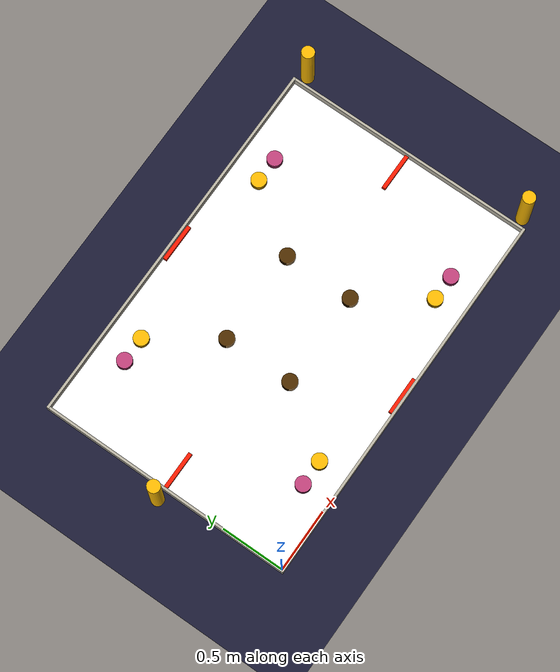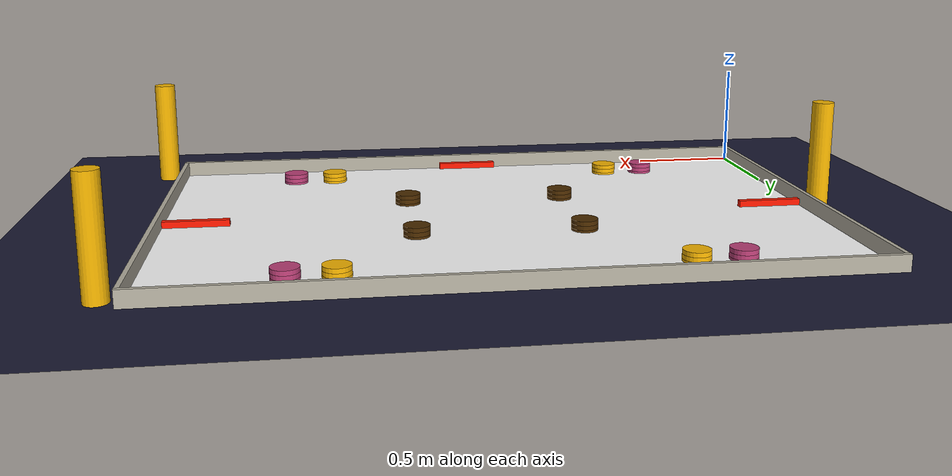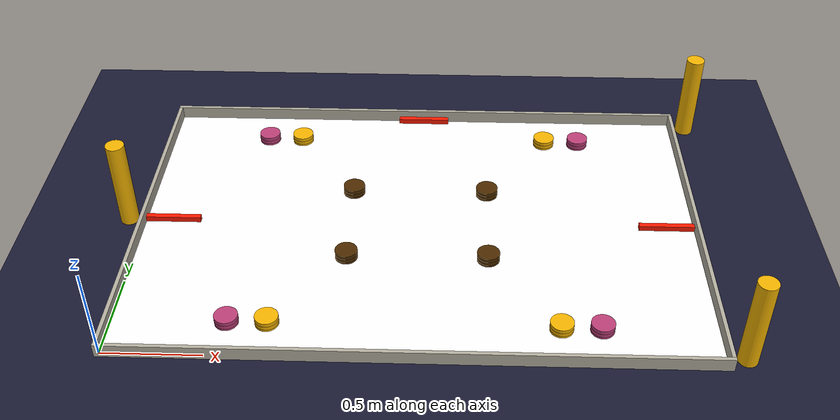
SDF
<?xml version="1.0" ?>
<sdf version="1.4">

    <world name="eurobot_2023">
        <!-- Plugin for simulating physics -->
        <plugin filename="gz-sim-physics-system" name="gz::sim::systems::Physics">
        </plugin>

        <!-- Plugin for handling user commands -->
        <plugin filename="gz-sim-user-commands-system" name="gz::sim::systems::UserCommands">
        </plugin>

        <!-- Plugin for broadcasting scene updates -->
        <plugin filename="gz-sim-scene-broadcaster-system" name="gz::sim::systems::SceneBroadcaster">
        </plugin>

        <!-- Paramter for the physics engine -->
        <physics name="1ms" type="ignored">
            <max_step_size>0.01</max_step_size>
            <real_time_factor>1.0</real_time_factor>
        </physics>

        <!-- Plugin for handling sensors like the LIDAR -->
        <plugin filename="gz-sim-sensors-system" name="gz::sim::systems::Sensors">
            <render_engine>ogre2</render_engine>
        </plugin>

        <!-- Plugin for IMU -->
        <plugin filename="gz-sim-imu-system" name="gz::sim::systems::Imu">
        </plugin>

        <!-- Plugin for contact sensor -->
        <plugin filename="gz-sim-contact-system" name="gz::sim::systems::Contact">
        </plugin>

        <scene>
            <ambient>0.4 0.4 0.4 1</ambient>
            <shadows>false</shadows>
        </scene>
        <light type="directional" name="light1">
            <pose>1.5 1 50 0 0 0</pose>
            <diffuse>0.5 0.5 0.5 1</diffuse>
            <specular>1 1 1 0</specular>
            <direction>1 0 0.5</direction>
        </light>
        <light type="directional" name="light2">
            <pose>1.5 1 50 0 0 0</pose>
            <diffuse>0.5 0.5 0.5 1</diffuse>
            <specular>1 1 1 0</specular>
            <direction>1 0 -0.5</direction>
        </light>

        <model name="ground_plane">
            <static>true</static>
            <link name="ground_link">
                <collision name="collision1">
                    <geometry>
                        <plane>
                            <normal>0 0 1</normal>
                        </plane>
                    </geometry>
                </collision>
                <visual name="visual1">
                    <geometry>
                        <plane>
                            <normal>0 0 1</normal>
                            <size>100 100</size>
                        </plane>
                    </geometry>
                    <material>
                        <ambient>0.1 0.1 0.1 0</ambient>
                        <diffuse>0.1 0.1 0.2 0</diffuse>
                        <specular>0 0 0 0</specular>
                        <emissive>0 0 0 0</emissive>
                    </material>
                </visual>
            </link>
        </model>

        <!--Playground-->
        <include>
            <name>playground</name>
            <uri>model://eurobot_playground_23</uri>
            <pose>1.5 1.0 -0.001 0 0 0</pose>
        </include>

        <!--Walls-->

        <include>
            <name>wall1</name>
            <uri>model://eurobot_23/walls/x_orient</uri>
            <pose>1.5 -0.01 0.025 0 0 0</pose>
        </include>
        <include>
            <name>wall2</name>
            <uri>model://eurobot_23/walls/x_orient</uri>
            <pose>1.5 2.01 0.025 0 0 0</pose>
        </include>
        <include>
            <name>wall3</name>
            <uri>model://eurobot_23/walls/y_orient</uri>
            <pose>-0.01 1 0.025 0 0 0</pose>
        </include>
        <include>
            <name>wall4</name>
            <uri>model://eurobot_23/walls/y_orient</uri>
            <pose>3.01 1 0.025 0 0 0</pose>
        </include>

        <!--Landmarks yellow-->
        <model name="landmark2">
            <pose>-0.094 1.0 0.25 0 0 0</pose>
            <static>true</static>
            <link name="link">
                <collision name="collision">
                    <geometry>
                        <cylinder>
                            <length>0.5</length>
                            <radius>0.05</radius>
                        </cylinder>
                    </geometry>
                    <laser_retro>20.0</laser_retro>
                </collision>
                <visual name="visual">
                    <geometry>
                        <cylinder>
                            <length>0.5</length>
                            <radius>0.05</radius>
                        </cylinder>
                    </geometry>
                    <material>
                        <ambient>0.96 0.71 0.0 1</ambient>
                        <diffuse>0.96 0.71 0.0 1</diffuse>
                        <specular>0 0 0 0</specular>
                        <emissive>0 0 0 0</emissive>
                    </material>
                </visual>
            </link>
        </model>

        <model name="landmark4">
            <pose>3.094 0.05 0.25 0 0 0</pose>
            <static>true</static>
            <link name="link">
                <collision name="collision">
                    <geometry>
                        <cylinder>
                            <length>0.5</length>
                            <radius>0.05</radius>
                        </cylinder>
                    </geometry>
                    <laser_retro>40.0</laser_retro>
                </collision>
                <visual name="visual">
                    <geometry>
                        <cylinder>
                            <length>0.5</length>
                            <radius>0.05</radius>
                        </cylinder>
                    </geometry>
                    <material>
                        <ambient>0.96 0.71 0.0 1</ambient>
                        <diffuse>0.96 0.71 0.0 1</diffuse>
                        <specular>0 0 0 0</specular>
                        <emissive>0 0 0 0</emissive>
                    </material>
                </visual>
            </link>
        </model>

        <model name="landmark6">
            <pose>3.094 1.95 0.25 0 0 0</pose>
            <static>true</static>
            <link name="link">
                <collision name="collision">
                    <geometry>
                        <cylinder>
                            <length>0.5</length>
                            <radius>0.05</radius>
                        </cylinder>
                    </geometry>
                    <laser_retro>60.0</laser_retro>
                </collision>
                <visual name="visual">
                    <geometry>
                        <cylinder>
                            <length>0.5</length>
                            <radius>0.05</radius>
                        </cylinder>
                    </geometry>
                    <material>
                        <ambient>0.96 0.71 0.0 1</ambient>
                        <diffuse>0.96 0.71 0.0 1</diffuse>
                        <specular>0 0 0 0</specular>
                        <emissive>0 0 0 0</emissive>
                    </material>
                </visual>
            </link>
        </model>
        <!--Landmarks purple-->

        <!--Cherry Holder-->

        <include>
            <name>holder1</name>
            <uri>model://eurobot_23/cherry_holder</uri>
            <pose>1.5 0.015 0.015 0 0 0</pose>
        </include>
        <include>
            <name>holder2</name>
            <uri>model://eurobot_23/cherry_holder</uri>
            <pose>1.5 1.985 0.015 0 0 0</pose>
        </include>
        <include>
            <name>holder3</name>
            <uri>model://eurobot_23/cherry_holder</uri>
            <pose>0.15 1 0.015 0 0 0</pose>
        </include>
        <include>
            <name>holder4</name>
            <uri>model://eurobot_23/cherry_holder</uri>
            <pose>2.85 1 0.015 0 0 0</pose>
        </include>

        <!--Cakes-->

        <!--Cake Set 1-->
        <!--Cake1-->
        <include>
            <name>icing1</name>
            <uri>model://eurobot_23/cake_icing</uri>
            <pose>0.575 0.225 0.04 0 0 0</pose>
        </include>
        <include>
            <name>icing2</name>
            <uri>model://eurobot_23/cake_icing</uri>
            <pose>0.575 0.225 0.02 0 0 0</pose>
        </include>
        <include>
            <name>icing3</name>
            <uri>model://eurobot_23/cake_icing</uri>
            <pose>0.575 0.225 0.00 0 0 0</pose>
        </include>

        <!--Cake2-->
        <include>
            <name>cream1</name>
            <uri>model://eurobot_23/cake_cream</uri>
            <pose>0.775 0.225 0.04 0 0 0</pose>
        </include>
        <include>
            <name>cream2</name>
            <uri>model://eurobot_23/cake_cream</uri>
            <pose>0.775 0.225 0.02 0 0 0</pose>
        </include>
        <include>
            <name>cream3</name>
            <uri>model://eurobot_23/cake_cream</uri>
            <pose>0.775 0.225 0.00 0 0 0</pose>
        </include>

        <!--Cake3-->
        <include>
            <name>sponge1</name>
            <uri>model://eurobot_23/cake_sponge</uri>
            <pose>1.125 0.725 0.04 0 0 0</pose>
        </include>
        <include>
            <name>sponge2</name>
            <uri>model://eurobot_23/cake_sponge</uri>
            <pose>1.125 0.725 0.02 0 0 0</pose>
        </include>
        <include>
            <name>sponge3</name>
            <uri>model://eurobot_23/cake_sponge</uri>
            <pose>1.125 0.725 0.00 0 0 0</pose>
        </include>

        <!--Cake Set 2-->
        <!--Cake4-->
        <include>
            <name>sponge4</name>
            <uri>model://eurobot_23/cake_sponge</uri>
            <pose>1.875 0.725 0.04 0 0 0</pose>
        </include>
        <include>
            <name>sponge5</name>
            <uri>model://eurobot_23/cake_sponge</uri>
            <pose>1.875 0.725 0.02 0 0 0</pose>
        </include>
        <include>
            <name>sponge6</name>
            <uri>model://eurobot_23/cake_sponge</uri>
            <pose>1.875 0.725 0.00 0 0 0</pose>
        </include>

        <!--Cake5-->

        <include>
            <name>cream4</name>
            <uri>model://eurobot_23/cake_cream</uri>
            <pose>2.225 0.225 0.04 0 0 0</pose>
        </include>
        <include>
            <name>cream5</name>
            <uri>model://eurobot_23/cake_cream</uri>
            <pose>2.225 0.225 0.02 0 0 0</pose>
        </include>
        <include>
            <name>cream6</name>
            <uri>model://eurobot_23/cake_cream</uri>
            <pose>2.225 0.225 0.00 0 0 0</pose>
        </include>

        <!--Cake6-->
        <include>
            <name>icing4</name>
            <uri>model://eurobot_23/cake_icing</uri>
            <pose>2.425 0.225 0.04 0 0 0</pose>
        </include>
        <include>
            <name>icing5</name>
            <uri>model://eurobot_23/cake_icing</uri>
            <pose>2.425 0.225 0.02 0 0 0</pose>
        </include>
        <include>
            <name>icing6</name>
            <uri>model://eurobot_23/cake_icing</uri>
            <pose>2.425 0.225 0.00 0 0 0</pose>
        </include>

        <!--Cake Set 3-->
        <!--Cake7-->
        <include>
            <name>icing7</name>
            <uri>model://eurobot_23/cake_icing</uri>
            <pose>2.425 1.775 0.04 0 0 0</pose>
        </include>
        <include>
            <name>icing8</name>
            <uri>model://eurobot_23/cake_icing</uri>
            <pose>2.425 1.775 0.02 0 0 0</pose>
        </include>
        <include>
            <name>icing9</name>
            <uri>model://eurobot_23/cake_icing</uri>
            <pose>2.425 1.775 0.00 0 0 0</pose>
        </include>

        <!--Cake8-->
        <include>
            <name>cream7</name>
            <uri>model://eurobot_23/cake_cream</uri>
            <pose>2.225 1.775 0.04 0 0 0</pose>
        </include>
        <include>
            <name>cream8</name>
            <uri>model://eurobot_23/cake_cream</uri>
            <pose>2.225 1.775 0.02 0 0 0</pose>
        </include>
        <include>
            <name>cream9</name>
            <uri>model://eurobot_23/cake_cream</uri>
            <pose>2.225 1.775 0.00 0 0 0</pose>
        </include>

        <!--Cake9-->
        <include>
            <name>sponge7</name>
            <uri>model://eurobot_23/cake_sponge</uri>
            <pose>1.875 1.275 0.04 0 0 0</pose>
        </include>
        <include>
            <name>sponge8</name>
            <uri>model://eurobot_23/cake_sponge</uri>
            <pose>1.875 1.275 0.02 0 0 0</pose>
        </include>
        <include>
            <name>sponge9</name>
            <uri>model://eurobot_23/cake_sponge</uri>
            <pose>1.875 1.275 0.00 0 0 0</pose>
        </include>

        <!--Cake Set 4-->
        <!--Cake10-->
        <include>
            <name>sponge10</name>
            <uri>model://eurobot_23/cake_sponge</uri>
            <pose>1.125 1.275 0.04 0 0 0</pose>
        </include>
        <include>
            <name>sponge11</name>
            <uri>model://eurobot_23/cake_sponge</uri>
            <pose>1.125 1.275 0.02 0 0 0</pose>
        </include>
        <include>
            <name>sponge12</name>
            <uri>model://eurobot_23/cake_sponge</uri>
            <pose>1.125 1.275 0.00 0 0 0</pose>
        </include>

        <!--Cake11-->
        <include>
            <name>cream10</name>
            <uri>model://eurobot_23/cake_cream</uri>
            <pose>0.775 1.775 0.04 0 0 0</pose>
        </include>
        <include>
            <name>cream11</name>
            <uri>model://eurobot_23/cake_cream</uri>
            <pose>0.775 1.775 0.02 0 0 0</pose>
        </include>
        <include>
            <name>cream12</name>
            <uri>model://eurobot_23/cake_cream</uri>
            <pose>0.775 1.775 0.00 0 0 0</pose>
        </include>

        <!--Cake12-->
        <include>
            <name>icing10</name>
            <uri>model://eurobot_23/cake_icing</uri>
            <pose>0.575 1.775 0.04 0 0 0</pose>
        </include>
        <include>
            <name>icing11</name>
            <uri>model://eurobot_23/cake_icing</uri>
            <pose>0.575 1.775 0.02 0 0 0</pose>
        </include>
        <include>
            <name>icing12</name>
            <uri>model://eurobot_23/cake_icing</uri>
            <pose>0.575 1.775 0.00 0 0 0</pose>
        </include>

    </world>
</sdf>

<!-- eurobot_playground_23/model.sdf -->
<sdf version="1.6">
  <model name="Eurobot Playground Model">
    <static>true</static>
    <link name="plane">
      <collision name="plane_collision">
        <geometry>
          <box>
            <size>3 2 0.0001</size>
          </box>
        </geometry>
      </collision>
      <visual name="plane_visual">
        <geometry>
          <box>
            <size>3 2 0.0001</size>
          </box>
        </geometry>
        <material>
          <ambient>1 1 1 1</ambient>
          <diffuse>1 1 1 1</diffuse>
          <specular>0.1 0.1 0.1 1</specular>
          <pbr>
            <metal>
              <albedo_map>materials/textures/vinyle_table_2023_large.png</albedo_map>
              <roughness>1.0</roughness>
              <metalness>0.0</metalness>
            </metal>
          </pbr>
        </material>
      </visual>
    </link>

  </model>
</sdf>

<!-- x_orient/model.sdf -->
<sdf version="1.5">
    <model name="wall">
        <static>true</static>
        <pose>1.502 0 0 0 0 0</pose>
        <link name="body">
            <collision name="collision1">
                <geometry>
                <box>
                    <size>3.04 0.02 0.09</size>
                </box>
                </geometry>
            </collision>
            <visual name="visual1">
                <geometry>
                <box>
                    <size>3.04 0.02 0.09</size>
                </box>
                </geometry>
                <material>
                <ambient>0.71 0.69 0.63 1.0</ambient>
                <diffuse>0.71 0.69 0.63 1.0</diffuse>
                <specular>0.1 0.1 0.1 1</specular>
                <emissive>0 0 0 0</emissive>
                </material>
            </visual>
        </link>
    </model>
</sdf>

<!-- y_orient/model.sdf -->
<sdf version="1.5">
    <model name="wall">
        <static>true</static>
        <pose>1.5 0 0 0 0 0</pose>
        <link name="body">
            <collision name="collision1">
                <geometry>
                <box>
                    <size>0.02 2 0.09</size>
                </box>
                </geometry>
            </collision>
            <visual name="visual1">
                <geometry>
                <box>
                    <size>0.02 2 0.09</size>
                </box>
                </geometry>
                <material>
                <ambient>0.71 0.69 0.63 1.0</ambient>
                <diffuse>0.71 0.69 0.63 1.0</diffuse>
                <specular>0.1 0.1 0.1 1</specular>
                <emissive>0 0 0 0</emissive>
                </material>
            </visual>
        </link>
    </model>
</sdf>

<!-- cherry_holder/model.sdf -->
<sdf version="1.5">
    <model name="cherry_holder">
        <static>true</static>
        <pose>0 0 0 0 0 0</pose>
        <link name="body">
            <collision name="collision1">
                <geometry>
                <box>
                    <size>0.3 0.03 0.03 </size>
                </box>
                </geometry>
            </collision>
            <visual name="visual1">
                <geometry>
                <box>
                    <size>0.3 0.03 0.03 </size>
                </box>
                </geometry>
                <material>
                <ambient>1 0.1 0 1</ambient>
                <diffuse>1 0.1 0 1</diffuse>
                <specular>0.1 0.1 0.1 1</specular>
                <emissive>0 0 0 0</emissive>
                </material>
            </visual>
        </link>
    </model>
</sdf>

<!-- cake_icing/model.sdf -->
<sdf version="1.5">
  <model name="cake_icing">
    <static>false</static>
    <link name="cake_icing">
      <collision name="cake_icing">
        <geometry>
          <cylinder>
            <radius>0.06</radius>
            <length>0.02</length>
          </cylinder>
        </geometry>
      </collision>
      <inertial>
        <inertia>
          <ixx>0.1</ixx>
          <ixy>0</ixy>
          <ixz>0</ixz>
          <iyy>0.1</iyy>
          <iyz>0</iyz>
          <izz>0.1</izz>
        </inertia>
        <mass>0.1</mass>
      </inertial>
      <visual name="cake_icing">
        <geometry>
          <cylinder>
            <radius>0.06</radius>
            <length>0.02</length>
          </cylinder>
        </geometry>
        <material>
          <ambient>0.74 0.25 0.47 1</ambient>
          <diffuse>0.74 0.25 0.47 1</diffuse>
          <specular>0.1 0.1 0.1 1</specular>
          <emissive>0 0 0 0</emissive>
        </material>
      </visual>
    </link>

  </model>
</sdf>

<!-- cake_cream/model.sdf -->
<sdf version="1.5">
  <model name="cake_cream">
    <static>false</static>
    <link name="cake_cream">
      <collision name="cake_cream">
        <geometry>
          <cylinder>
            <radius>0.06</radius>
            <length>0.02</length>
          </cylinder>
        </geometry>
      </collision>
      <inertial>
        <inertia>
          <ixx>0.1</ixx>
          <ixy>0</ixy>
          <ixz>0</ixz>
          <iyy>0.1</iyy>
          <iyz>0</iyz>
          <izz>0.1</izz>
        </inertia>
        <mass>0.1</mass>
      </inertial>
      <visual name="cake_cream">
        <geometry>
          <cylinder>
            <radius>0.06</radius>
            <length>0.02</length>
          </cylinder>
        </geometry>

        <material>
          <ambient>0.97 0.71 0 1</ambient>
          <diffuse>0.97 0.71 0 1</diffuse>
          <specular>0.1 0.1 0.1 1</specular>
          <emissive>0 0 0 0</emissive>
        </material>
      </visual>
    </link>

  </model>
</sdf>

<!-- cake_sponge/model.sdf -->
<sdf version="1.5">
  <model name="sponge">
    <static>false</static>
    <link name="sponge">
      <collision name="sponge">
        <geometry>
          <cylinder>
            <radius>0.06</radius>
            <length>0.02</length>
          </cylinder>
        </geometry>
      </collision>
      <inertial>
        <inertia>
          <ixx>0.1</ixx>
          <ixy>0</ixy>
          <ixz>0</ixz>
          <iyy>0.1</iyy>
          <iyz>0</iyz>
          <izz>0.1</izz>
        </inertia>
        <mass>0.1</mass>
      </inertial>
      <visual name="sponge">
        <geometry>
          <cylinder>
            <radius>0.06</radius>
            <length>0.02</length>
          </cylinder>
        </geometry>
        <material>
          <ambient>0.3 0.17 0.0 1</ambient>
          <diffuse>0.3 0.17 0.0 1</diffuse>
          <specular>0.1 0.1 0.1 1</specular>
          <emissive>0 0 0 0</emissive>
        </material>
      </visual>
    </link>

  </model>
</sdf>
